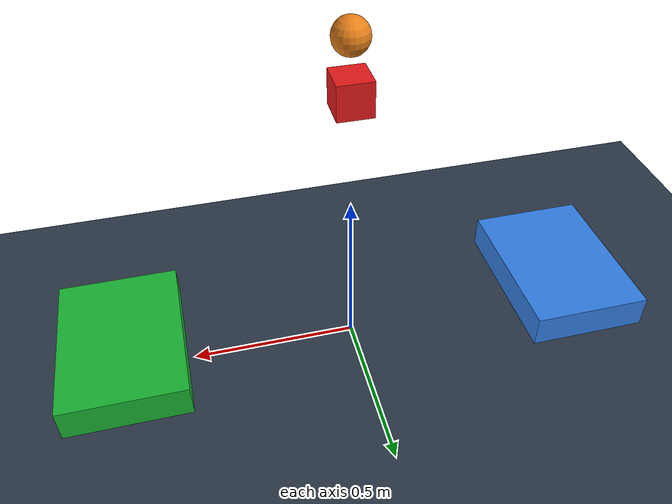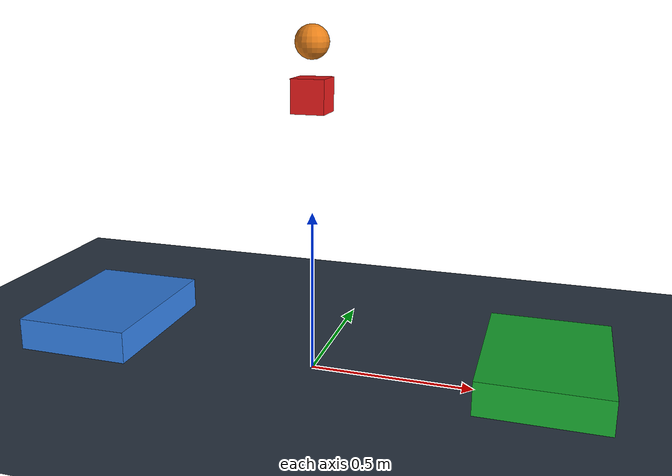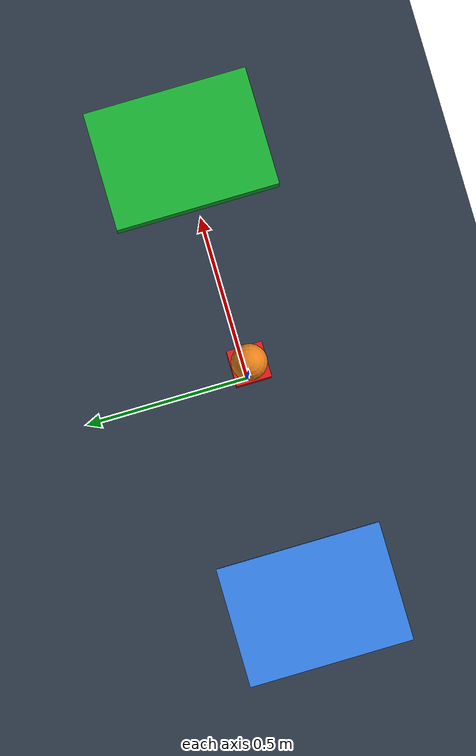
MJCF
<mujoco model="magnetic_crane">
  <compiler angle="radian"/>
  <option timestep="0.002" integrator="Euler" iterations="1000" tolerance="1e-6" gravity="0 0 -9.81">
    <flag contact="enable" equality="enable" limit="disable" frictionloss="disable"/>
  </option>
  <asset>
    <texture name="floor_grid" type="2d" builtin="checker" rgb1="0.12 0.15 0.20" rgb2="0.22 0.28 0.35" width="512" height="512"/>
    <material name="floor_material" texture="floor_grid" texrepeat="8 8" reflectance="0.1"/>
  </asset>
  <worldbody>
    <light directional="true" pos="0 -2 5" dir="0 0.3 -1" diffuse="0.9 0.9 0.9" specular="0.3 0.3 0.3"/>

    <geom material="floor_material" name="floor" type="plane" size="5 5 0.1" pos="0 0 0" condim="3"/>
    <body name="binL" pos="-0.7 0 0">
      <geom name="binL_geom" type="box" size="0.18 0.25 0.05" pos="0 0 0.1" rgba="0.2 0.5 0.9 1" mass="0" contype="1" conaffinity="0" condim="3"/>
    </body>
    <body name="binR" pos="0.7 0 0">
      <geom name="binR_geom" type="box" size="0.18 0.25 0.05" pos="0 0 0.1" rgba="0.1 0.7 0.2 1" mass="0" contype="1" conaffinity="0" condim="3"/>
    </body>
    <body name="hook" pos="0 0 1.0" mocap="true">
      <geom name="hook_geom" type="sphere" size="0.05" rgba="0.9 0.5 0.1 1" mass="0.2" contype="0" conaffinity="0" condim="1"/>
    </body>
    <body name="cargo" pos="0 0 0.85">
      <freejoint name="cargo_free"/>
      <geom name="cargo_geom" type="box" size="0.05 0.05 0.05" rgba="0.9 0.1 0.1 1" mass="0.4" friction="0.4 0.05 0.02" contype="1" conaffinity="1" condim="3"/>
    </body>
  </worldbody>
  <contact>
    <pair geom1="cargo_geom" geom2="binL_geom"/>
    <pair geom1="cargo_geom" geom2="binR_geom"/>
    <pair geom1="cargo_geom" geom2="floor"/>
  </contact>
  <equality>
    <weld name="magnet" body1="hook" body2="cargo"/>
  </equality>
  <keyframe>
    <key name="start" qpos="0 0 0.85 1 0 0 0" mpos="0 0 1.0" mquat="1 0 0 0"/>
  </keyframe>
</mujoco>
